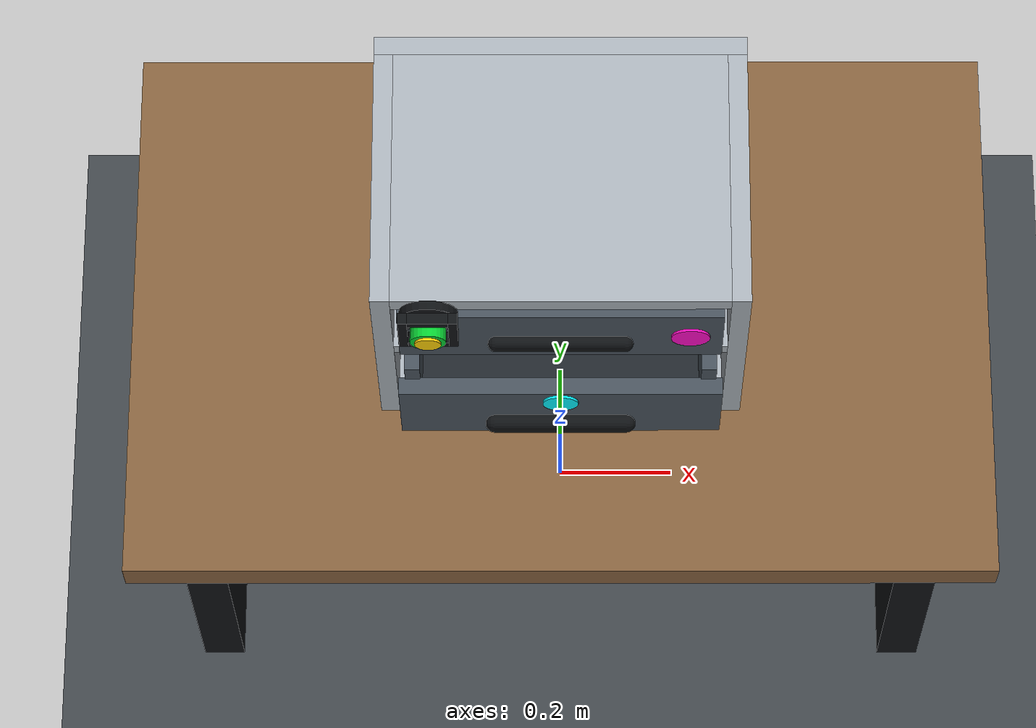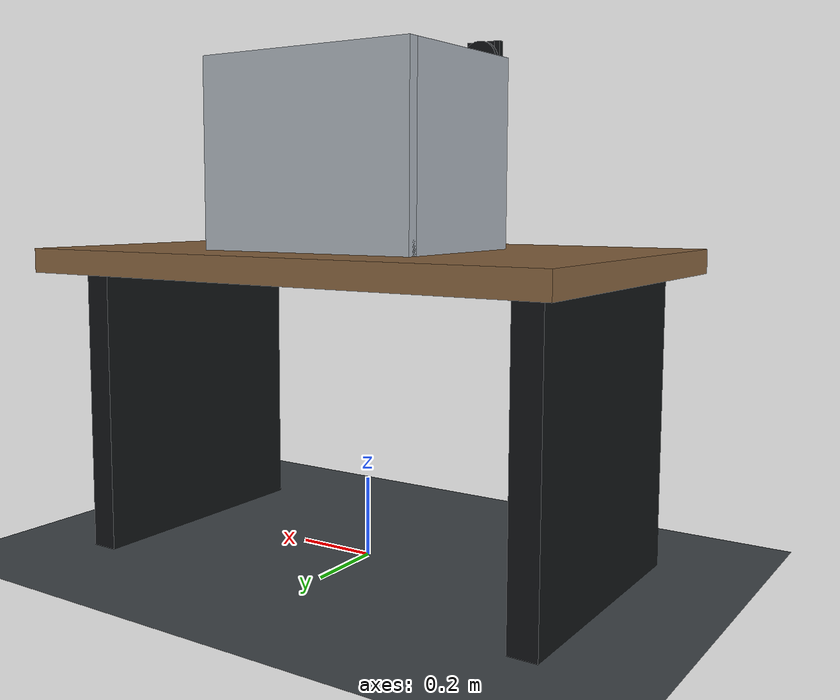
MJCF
<mujoco model="smart_desktop_tool_drawer">
  <compiler angle="degree" autolimits="true"/>
  <option timestep="0.002" gravity="0 0 -9.81" integrator="implicitfast" solver="Newton"/>
  <statistic center="0 -0.05 0.85" extent="1.55"/>
  <visual>
    <global offwidth="640" offheight="480"/>
    <quality shadowsize="2048"/>
    <map znear="0.01" zfar="8"/>
    <headlight ambient="0.35 0.35 0.38" diffuse="0.72 0.72 0.70" specular="0.18 0.18 0.18"/>
  </visual>
  <asset>
    <texture name="floor_tex" type="2d" builtin="checker" rgb1="0.20 0.22 0.24" rgb2="0.30 0.32 0.34" width="512" height="512"/>
    <material name="floor_mat" texture="floor_tex" texrepeat="5 5" reflectance="0.05"/>
    <material name="bench_mat" rgba="0.52 0.38 0.24 1" roughness="0.75"/>
    <material name="cabinet_mat" rgba="0.66 0.69 0.72 1" roughness="0.55" metallic="0.25"/>
    <material name="drawer_mat" rgba="0.28 0.32 0.36 1" roughness="0.48" metallic="0.35"/>
    <material name="inside_mat" rgba="0.13 0.15 0.17 1" roughness="0.75"/>
    <material name="handle_mat" rgba="0.06 0.07 0.08 1" roughness="0.3" metallic="0.7"/>
    <material name="green_mat" rgba="0.03 0.82 0.20 1" emission="0.10"/>
  </asset>
  <default>
    <geom friction="0.7 0.01 0.001" condim="3" solref="0.01 1"/>
  </default>
  <worldbody>
    <light name="key_light" pos="-1 -1 2.7" dir="0.3 0.4 -1" directional="true" castshadow="true"/>
    <light name="fill_light" pos="1.4 -0.2 1.8" dir="-0.8 0 -0.8" directional="true" diffuse="0.4 0.42 0.46"/>
    <camera name="fixed_inspection_camera" pos="1.20 -1.45 1.38" quat="0.7612142645 0.5235515583 0.2168621560 0.3153052722" fovy="48"/>
    <geom name="ground_geom" type="plane" size="2 2 0.1" material="floor_mat"/>
    <body name="workbench" pos="0 0 0.75">
      <geom name="workbench_top_geom" type="box" size="0.70 0.45 0.03" material="bench_mat"/>
      <geom name="bench_leg_left" type="box" pos="-0.60 0 -0.375" size="0.035 0.34 0.375" material="handle_mat"/>
      <geom name="bench_leg_right" type="box" pos="0.60 0 -0.375" size="0.035 0.34 0.375" material="handle_mat"/>
    </body>
    <body name="cabinet" pos="0 0.04 1.01">
      <geom name="cabinet_back_geom" type="box" pos="0 0.215 0" size="0.29 0.015 0.23" material="cabinet_mat"/>
      <geom name="cabinet_left_geom" type="box" pos="-0.275 0 0" size="0.015 0.215 0.23" material="cabinet_mat"/>
      <geom name="cabinet_right_geom" type="box" pos="0.275 0 0" size="0.015 0.215 0.23" material="cabinet_mat"/>
      <geom name="cabinet_top_geom" type="box" pos="0 0 0.215" size="0.26 0.215 0.015" material="cabinet_mat"/>
      <geom name="cabinet_bottom_geom" type="box" pos="0 0 -0.215" size="0.26 0.215 0.015" material="cabinet_mat"/>
      <geom name="cabinet_divider_geom" type="box" pos="0 0 0.035" size="0.26 0.215 0.012" material="cabinet_mat"/>
      <geom name="upper_drawer_false_front" type="box" pos="0 -0.217 0.125" size="0.25 0.012 0.075" material="drawer_mat"/>
      <geom name="upper_handle" type="capsule" fromto="-0.10 -0.242 0.125 0.10 -0.242 0.125" size="0.012" material="handle_mat"/>
      <site name="camera_check_marker" type="cylinder" pos="0.20 -0.231 0.125" size="0.030 0.002" zaxis="0 -1 0" rgba="1 0.05 0.78 1" group="2"/>
    </body>
    <body name="unlock_button_mount" pos="-0.20 -0.215 1.245" quat="0.70710678 0.70710678 0 0">
      <geom name="unlock_button_backplate" type="cylinder" pos="0 0 -0.014" size="0.045 0.007" material="handle_mat"/>
      <geom name="unlock_bezel_left" type="box" pos="-0.038 0 0.008" size="0.007 0.045 0.009" material="handle_mat"/>
      <geom name="unlock_bezel_right" type="box" pos="0.038 0 0.008" size="0.007 0.045 0.009" material="handle_mat"/>
      <geom name="unlock_bezel_top" type="box" pos="0 0.038 0.008" size="0.031 0.007 0.009" material="handle_mat"/>
      <geom name="unlock_bezel_bottom" type="box" pos="0 -0.038 0.008" size="0.031 0.007 0.009" material="handle_mat"/>
      <body name="unlock_button" pos="0 0 0.018">
        <joint name="unlock_button_slide" type="slide" axis="0 0 -1" range="0 0.012" damping="8" solreflimit="0.004 1" solimplimit="0.99 0.999 0.0005"/>
        <geom name="unlock_button_geom" type="cylinder" size="0.0275 0.011" mass="0.04" material="green_mat"/>
        <site name="unlock_point_marker" type="cylinder" pos="0 0 0.013" size="0.020 0.002" rgba="1 0.82 0.02 1" group="2"/>
      </body>
    </body>
    <body name="tool_drawer" pos="0 -0.005 0.86">
      <joint name="drawer_slide" type="slide" axis="0 -1 0" range="0 0.22" damping="12" frictionloss="1.0"/>
      <geom name="drawer_bottom_geom" type="box" pos="0 0 0" size="0.245 0.19 0.012" mass="1.8" material="inside_mat"/>
      <geom name="drawer_left_geom" type="box" pos="-0.233 0 0.075" size="0.012 0.19 0.075" mass="0.2" material="drawer_mat"/>
      <geom name="drawer_right_geom" type="box" pos="0.233 0 0.075" size="0.012 0.19 0.075" mass="0.2" material="drawer_mat"/>
      <geom name="drawer_back_geom" type="box" pos="0 0.178 0.075" size="0.221 0.012 0.075" mass="0.2" material="drawer_mat"/>
      <geom name="drawer_front_geom" type="box" pos="0 -0.202 0.03" size="0.255 0.014 0.08" mass="0.5" material="drawer_mat"/>
      <!-- The handle is the outermost surface of a body that moves 0.22 m, and
           the tools ride in the open tray, so all three collide. -->
      <geom name="drawer_handle_geom" type="capsule" fromto="-0.105 -0.235 0.03 0.105 -0.235 0.03" size="0.014" mass="0.1" material="handle_mat"/>
      <site name="drawer_handle_marker" type="cylinder" pos="0 -0.218 0.077" size="0.028 0.002" zaxis="0 -1 0" rgba="0.02 0.95 1 1" group="2"/>
      <geom name="tool_red" type="box" pos="-0.11 0.02 0.037" size="0.055 0.075 0.025" rgba="0.82 0.08 0.06 1" mass="0.0"/>
      <geom name="tool_yellow" type="cylinder" pos="0.09 0.03 0.052" size="0.035 0.04" rgba="0.94 0.62 0.03 1" mass="0.0"/>
    </body>
  </worldbody>
  <actuator>
    <position name="unlock_button_press" joint="unlock_button_slide" kp="450" ctrlrange="0 0.012"/>
    <position name="drawer_pull" joint="drawer_slide" kp="900" kv="70" ctrlrange="0 0.22"/>
  </actuator>
  <sensor>
    <jointpos name="drawer_position_sensor" joint="drawer_slide"/>
    <jointpos name="unlock_button_position_sensor" joint="unlock_button_slide"/>
  </sensor>
</mujoco>
